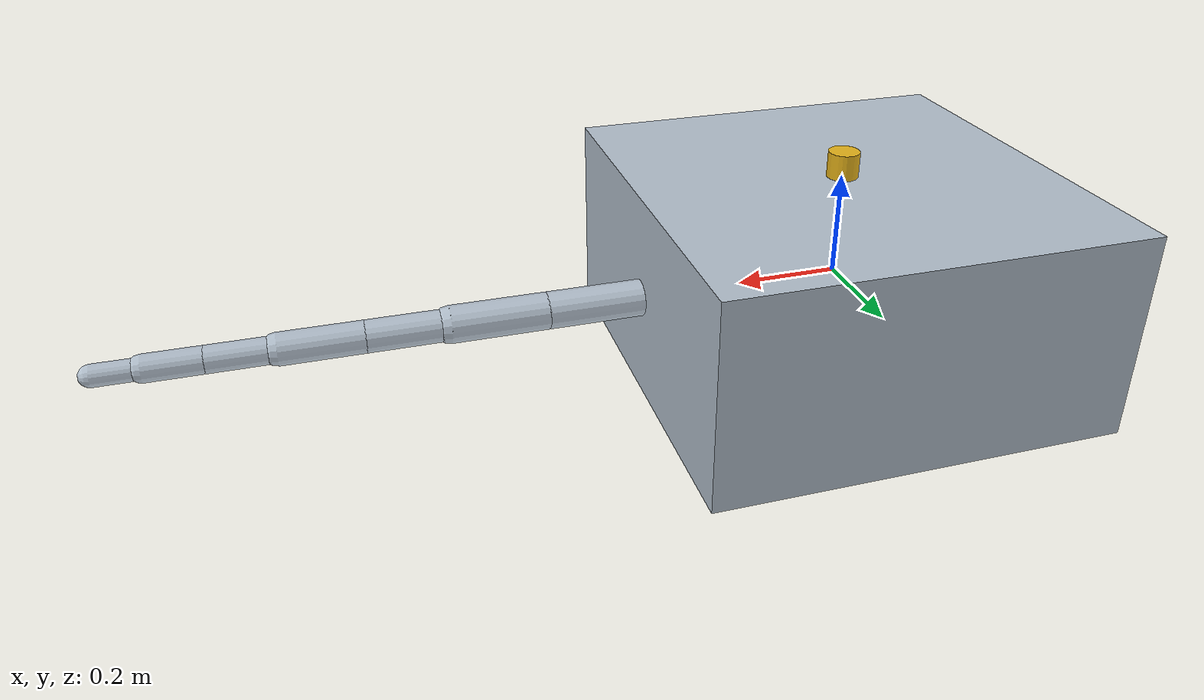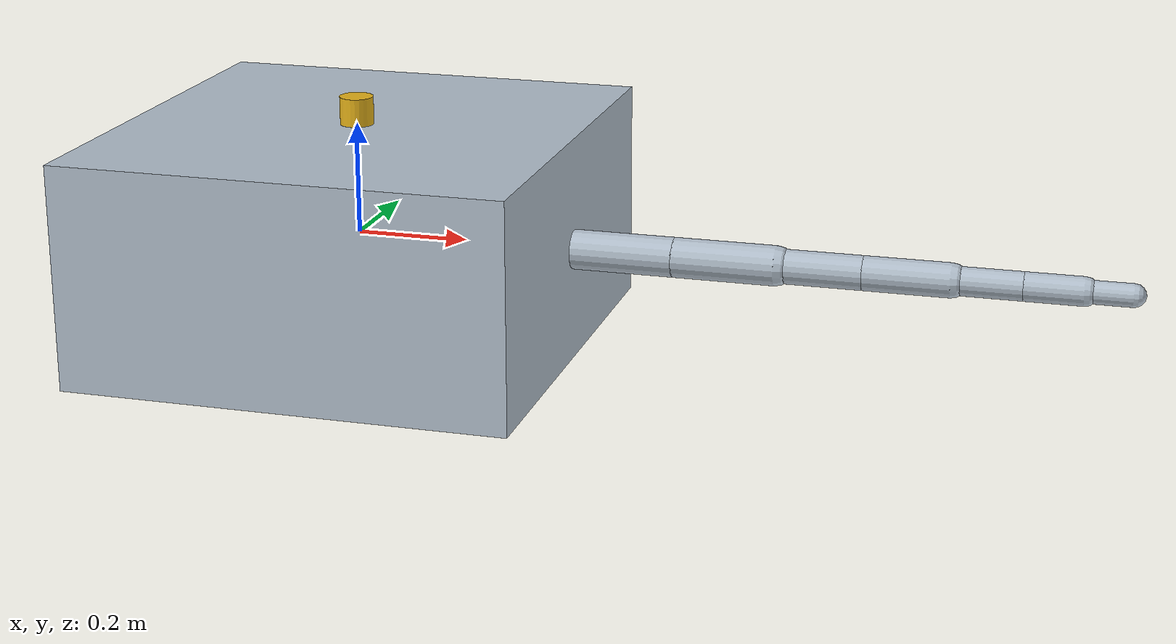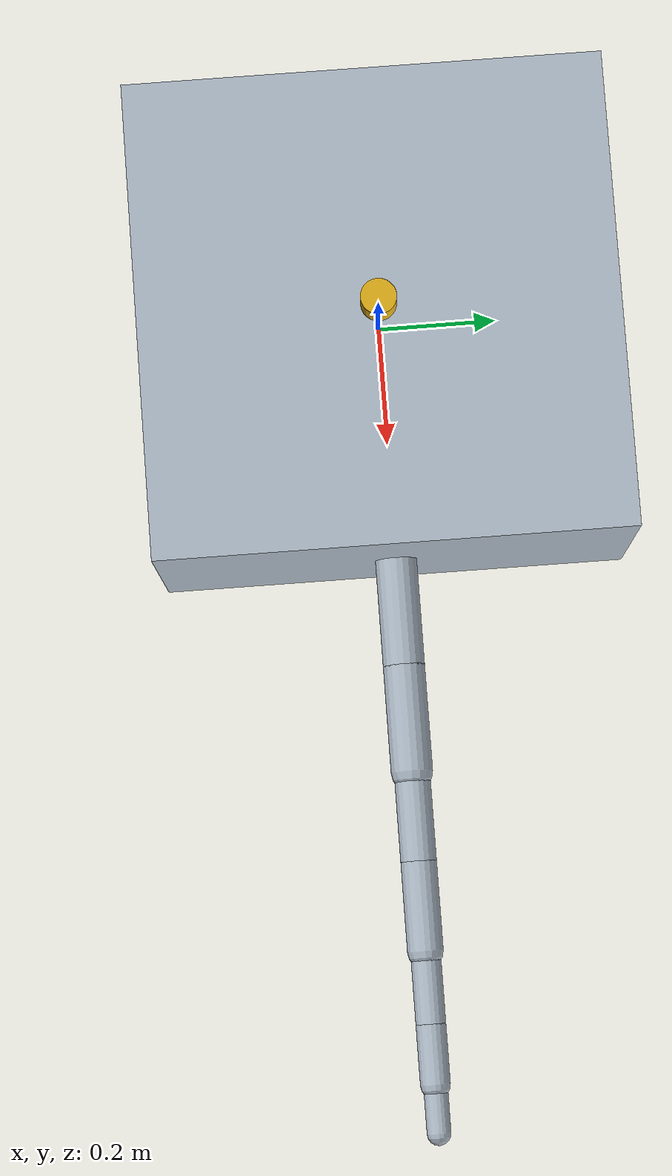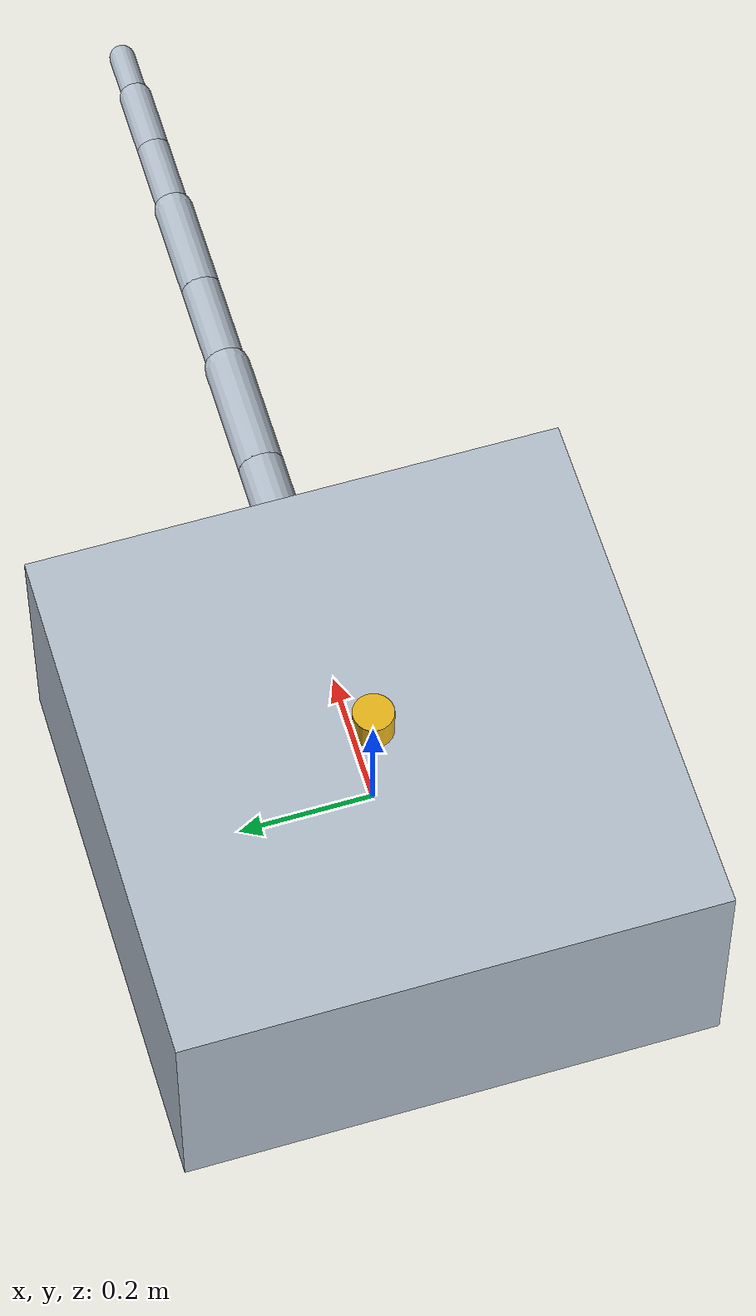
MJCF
<mujoco model="ff_medium">
  <!-- Medium-class servicer: representative arm/base mass ratio (6.6 kg arm / 150 kg base).
       Only the base differs between servicers; the arm is in common/. -->
  <include file="common/arm_defs.xml"/>

  <worldbody>
    <body name="base" pos="0 0 0">
      <freejoint name="base_free"/>
      <geom name="base_geom" type="box" size="0.4 0.4 0.2" mass="150"/>
      <!-- Antenna boresight = site z-axis; the +/-5 deg pointing limit is measured on it. -->
      <site name="antenna" pos="0 0 0.2" zaxis="0 0 1" type="cylinder" size="0.03 0.05" rgba="0.9 0.7 0.1 1"/>

      <!-- Shoulder mounted on the +x face of the base -->
      <body name="mount" pos="0.4 0 0">
        <include file="common/arm_body.xml"/>
      </body>
    </body>
  </worldbody>
</mujoco>

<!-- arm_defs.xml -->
<mujoco>
  <!-- Simulation options, defaults and actuators shared by all three servicers. -->
  <!-- RK4 at 0.25 ms keeps total-momentum drift < 1.2e-7 over 10 s of random
       qdot (gate is 1e-6). Euler/implicitfast at 2 ms drift ~1e-3. See DECISIONS.md. -->
  <option gravity="0 0 0" timestep="0.00025" integrator="RK4"/>

  <default>
    <joint type="hinge" damping="0.2" armature="0.01"/>
    <geom contype="0" conaffinity="0" rgba="0.7 0.75 0.8 1"/>
    <!-- Velocity servos: the schemes output qdot, ctrl is the commanded qdot [rad/s].
         Torque saturates at forcerange, as a real joint drive would. -->
    <velocity kv="20" ctrlrange="-1 1" forcelimited="true" forcerange="-5 5"/>
  </default>

  <actuator>
    <velocity name="a1" joint="j1"/>
    <velocity name="a2" joint="j2"/>
    <velocity name="a3" joint="j3"/>
    <velocity name="a4" joint="j4"/>
    <velocity name="a5" joint="j5"/>
    <velocity name="a6" joint="j6"/>
    <velocity name="a7" joint="j7"/>
  </actuator>
</mujoco>

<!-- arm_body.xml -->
<mujoco>
  <body name="link1" pos="0 0 0">
    <joint name="j1" axis="0 0 1"/>
    <geom type="capsule" fromto="0 0 0 0.18 0 0" size="0.035" mass="1.2"/>

    <body name="link2" pos="0.18 0 0">
      <joint name="j2" axis="0 1 0"/>
      <geom type="capsule" fromto="0 0 0 0.18 0 0" size="0.035" mass="1.2"/>

      <body name="link3" pos="0.18 0 0">
        <joint name="j3" axis="1 0 0"/>
        <geom type="capsule" fromto="0 0 0 0.15 0 0" size="0.03" mass="1.0"/>

        <body name="link4" pos="0.15 0 0">
          <joint name="j4" axis="0 1 0"/>
          <geom type="capsule" fromto="0 0 0 0.15 0 0" size="0.03" mass="1.0"/>

          <body name="link5" pos="0.15 0 0">
            <joint name="j5" axis="1 0 0"/>
            <geom type="capsule" fromto="0 0 0 0.12 0 0" size="0.025" mass="0.8"/>

            <body name="link6" pos="0.12 0 0">
              <joint name="j6" axis="0 1 0"/>
              <geom type="capsule" fromto="0 0 0 0.1 0 0" size="0.025" mass="0.8"/>

              <body name="link7" pos="0.1 0 0">
                <joint name="j7" axis="1 0 0"/>
                <geom type="capsule" fromto="0 0 0 0.08 0 0" size="0.02" mass="0.6"/>
                <site name="end_effector" pos="0.08 0 0" size="0.015"/>
              </body>
            </body>
          </body>
        </body>
      </body>
    </body>
  </body>
</mujoco>
